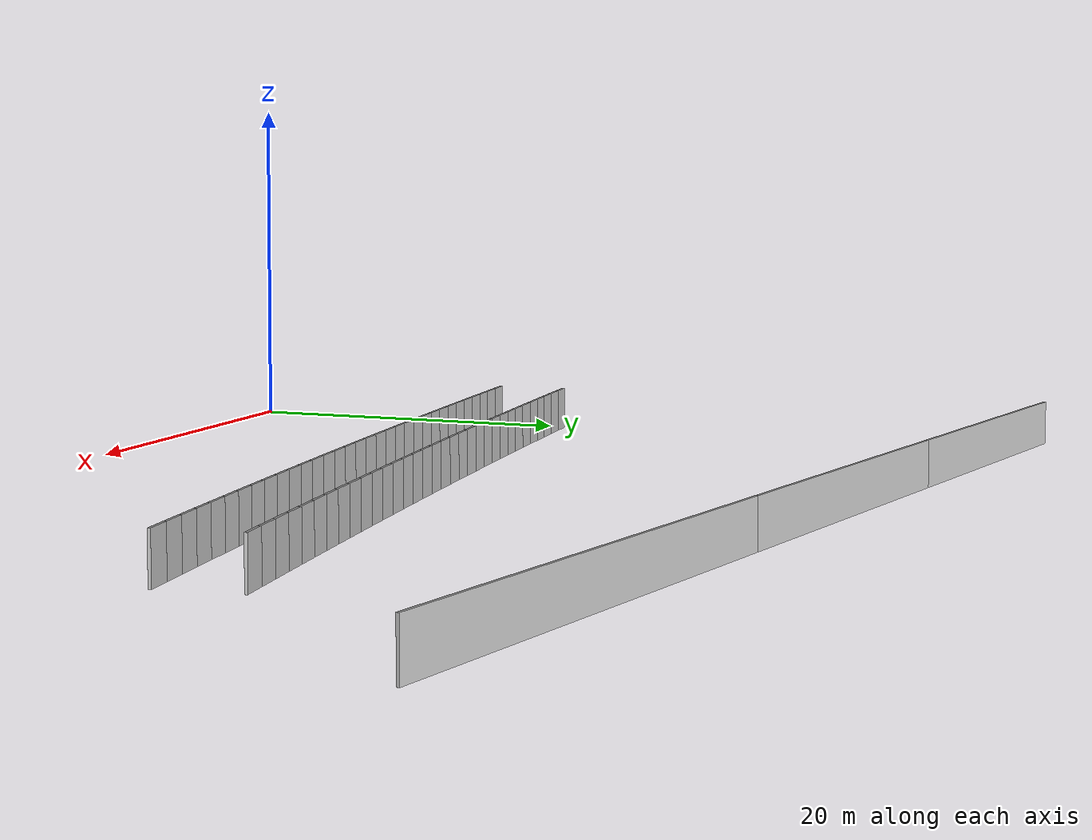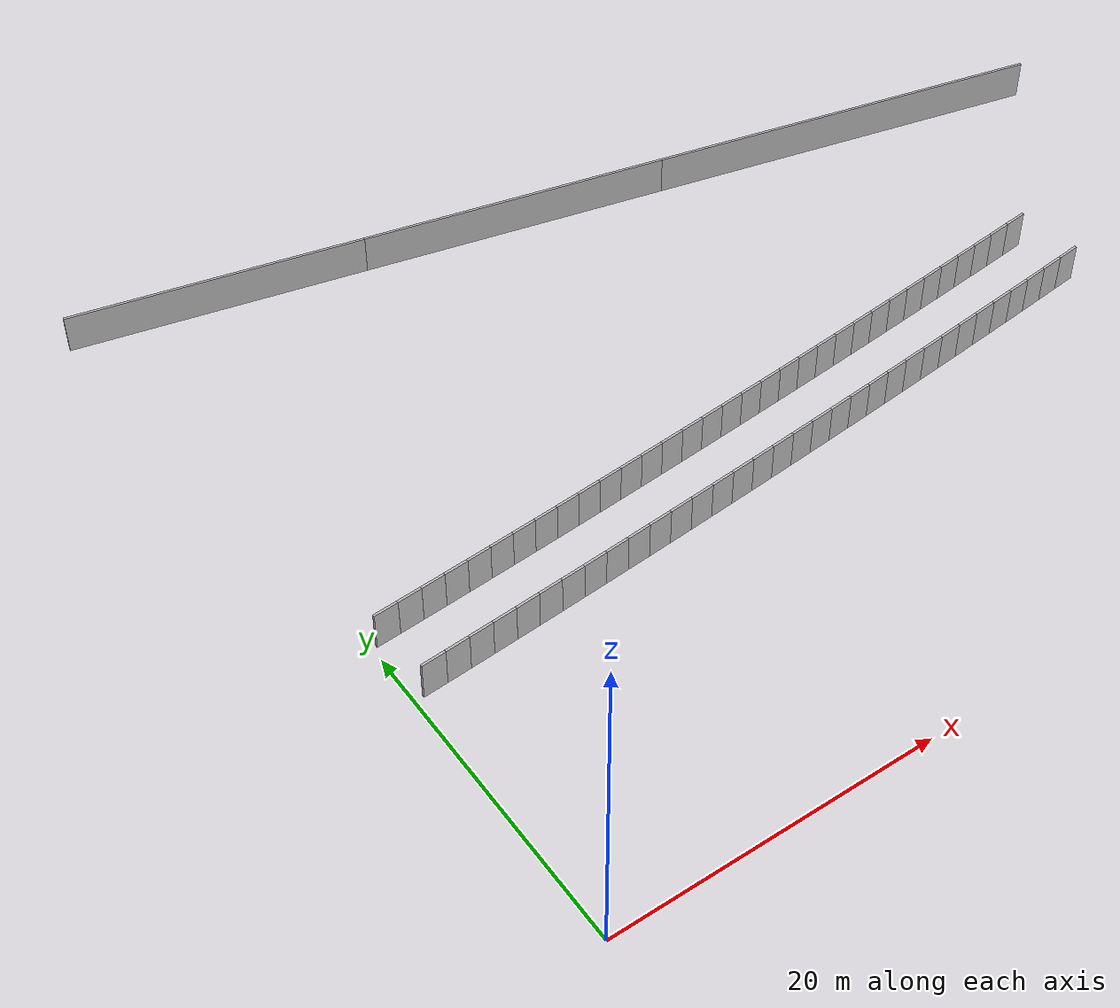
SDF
<?xml version="1.0" ?>
<sdf version="1.6">
  <model name="sps_2703">
    <pose frame="">0 0 0 0 -0 0</pose>
    <static>1</static>
    <self_collide>0</self_collide>
    <allow_auto_disable>0</allow_auto_disable>
    <link name="Wall237">
      <kinematic>0</kinematic>
      <gravity>1</gravity>
      <self_collide>0</self_collide>
      <collision name="collision">
        <geometry>
          <box>
            <size>18.5004 0.15 2.5</size>
          </box>
        </geometry>
        <pose frame="">0 0 0 0 -0 0</pose>
      </collision>
      <visual name="visual">
        <geometry>
          <box>
            <size>18.5004 0.15 2.5</size>
          </box>
        </geometry>
        <pose frame="">0 0 0 0 -0 0</pose>
        <cast_shadows>1</cast_shadows>
        <transparency>0.0</transparency>
      </visual>
      <pose frame="">6.13137 48.5066 1.25 0 0 -0.214248</pose>
    </link>
    <link name="Wall238">
      <kinematic>0</kinematic>
      <gravity>1</gravity>
      <self_collide>0</self_collide>
      <collision name="collision">
        <geometry>
          <box>
            <size>19.751 0.15 2.5</size>
          </box>
        </geometry>
        <pose frame="">0 0 0 0 -0 0</pose>
      </collision>
      <visual name="visual">
        <geometry>
          <box>
            <size>19.751 0.15 2.5</size>
          </box>
        </geometry>
        <pose frame="">0 0 0 0 -0 0</pose>
        <cast_shadows>1</cast_shadows>
        <transparency>0.0</transparency>
      </visual>
      <pose frame="">24.8198 44.4402 1.25 0 0 -0.214253</pose>
    </link>
    <link name="Wall239">
      <kinematic>0</kinematic>
      <gravity>1</gravity>
      <self_collide>0</self_collide>
      <collision name="collision">
        <geometry>
          <box>
            <size>26.0944 0.15 2.5</size>
          </box>
        </geometry>
        <pose frame="">0 0 0 0 -0 0</pose>
      </collision>
      <visual name="visual">
        <geometry>
          <box>
            <size>26.0944 0.15 2.5</size>
          </box>
        </geometry>
        <pose frame="">0 0 0 0 -0 0</pose>
        <cast_shadows>1</cast_shadows>
        <transparency>0.0</transparency>
      </visual>
      <pose frame="">47.2183 39.5664 1.25 0 0 -0.214253</pose>
    </link>
    <link name="Wall3705">
      <kinematic>0</kinematic>
      <gravity>1</gravity>
      <self_collide>0</self_collide>
      <collision name="collision">
        <geometry>
          <box>
            <size>1.49669 0.15 2.5</size>
          </box>
        </geometry>
        <pose frame="">0 0 0 0 -0 0</pose>
      </collision>
      <visual name="visual">
        <geometry>
          <box>
            <size>1.49669 0.15 2.5</size>
          </box>
        </geometry>
        <pose frame="">0 0 0 0 -0 0</pose>
        <cast_shadows>1</cast_shadows>
        <transparency>0.0</transparency>
      </visual>
      <pose frame="">1.02843 20.9994 1.25 0 -0 0.0643139</pose>
    </link>
    <link name="Wall3706">
      <kinematic>0</kinematic>
      <gravity>1</gravity>
      <self_collide>0</self_collide>
      <collision name="collision">
        <geometry>
          <box>
            <size>1.49646 0.15 2.5</size>
          </box>
        </geometry>
        <pose frame="">0 0 0 0 -0 0</pose>
      </collision>
      <visual name="visual">
        <geometry>
          <box>
            <size>1.49646 0.15 2.5</size>
          </box>
        </geometry>
        <pose frame="">0 0 0 0 -0 0</pose>
        <cast_shadows>1</cast_shadows>
        <transparency>0.0</transparency>
      </visual>
      <pose frame="">2.52184 21.0967 1.25 0 -0 0.0657949</pose>
    </link>
    <link name="Wall3707">
      <kinematic>0</kinematic>
      <gravity>1</gravity>
      <self_collide>0</self_collide>
      <collision name="collision">
        <geometry>
          <box>
            <size>1.49663 0.15 2.5</size>
          </box>
        </geometry>
        <pose frame="">0 0 0 0 -0 0</pose>
      </collision>
      <visual name="visual">
        <geometry>
          <box>
            <size>1.49663 0.15 2.5</size>
          </box>
        </geometry>
        <pose frame="">0 0 0 0 -0 0</pose>
        <cast_shadows>1</cast_shadows>
        <transparency>0.0</transparency>
      </visual>
      <pose frame="">4.01507 21.1963 1.25 0 -0 0.0674227</pose>
    </link>
    <link name="Wall3708">
      <kinematic>0</kinematic>
      <gravity>1</gravity>
      <self_collide>0</self_collide>
      <collision name="collision">
        <geometry>
          <box>
            <size>1.49654 0.15 2.5</size>
          </box>
        </geometry>
        <pose frame="">0 0 0 0 -0 0</pose>
      </collision>
      <visual name="visual">
        <geometry>
          <box>
            <size>1.49654 0.15 2.5</size>
          </box>
        </geometry>
        <pose frame="">0 0 0 0 -0 0</pose>
        <cast_shadows>1</cast_shadows>
        <transparency>0.0</transparency>
      </visual>
      <pose frame="">5.50817 21.2983 1.25 0 -0 0.06898</pose>
    </link>
    <link name="Wall3709">
      <kinematic>0</kinematic>
      <gravity>1</gravity>
      <self_collide>0</self_collide>
      <collision name="collision">
        <geometry>
          <box>
            <size>1.49636 0.15 2.5</size>
          </box>
        </geometry>
        <pose frame="">0 0 0 0 -0 0</pose>
      </collision>
      <visual name="visual">
        <geometry>
          <box>
            <size>1.49636 0.15 2.5</size>
          </box>
        </geometry>
        <pose frame="">0 0 0 0 -0 0</pose>
        <cast_shadows>1</cast_shadows>
        <transparency>0.0</transparency>
      </visual>
      <pose frame="">7.00097 21.4028 1.25 0 -0 0.0707873</pose>
    </link>
    <link name="Wall3710">
      <kinematic>0</kinematic>
      <gravity>1</gravity>
      <self_collide>0</self_collide>
      <collision name="collision">
        <geometry>
          <box>
            <size>1.49645 0.15 2.5</size>
          </box>
        </geometry>
        <pose frame="">0 0 0 0 -0 0</pose>
      </collision>
      <visual name="visual">
        <geometry>
          <box>
            <size>1.49645 0.15 2.5</size>
          </box>
        </geometry>
        <pose frame="">0 0 0 0 -0 0</pose>
        <cast_shadows>1</cast_shadows>
        <transparency>0.0</transparency>
      </visual>
      <pose frame="">8.49355 21.5097 1.25 0 -0 0.0722141</pose>
    </link>
    <link name="Wall3711">
      <kinematic>0</kinematic>
      <gravity>1</gravity>
      <self_collide>0</self_collide>
      <collision name="collision">
        <geometry>
          <box>
            <size>1.49669 0.15 2.5</size>
          </box>
        </geometry>
        <pose frame="">0 0 0 0 -0 0</pose>
      </collision>
      <visual name="visual">
        <geometry>
          <box>
            <size>1.49669 0.15 2.5</size>
          </box>
        </geometry>
        <pose frame="">0 0 0 0 -0 0</pose>
        <cast_shadows>1</cast_shadows>
        <transparency>0.0</transparency>
      </visual>
      <pose frame="">9.98614 21.6189 1.25 0 -0 0.0738381</pose>
    </link>
    <link name="Wall3712">
      <kinematic>0</kinematic>
      <gravity>1</gravity>
      <self_collide>0</self_collide>
      <collision name="collision">
        <geometry>
          <box>
            <size>1.49643 0.15 2.5</size>
          </box>
        </geometry>
        <pose frame="">0 0 0 0 -0 0</pose>
      </collision>
      <visual name="visual">
        <geometry>
          <box>
            <size>1.49643 0.15 2.5</size>
          </box>
        </geometry>
        <pose frame="">0 0 0 0 -0 0</pose>
        <cast_shadows>1</cast_shadows>
        <transparency>0.0</transparency>
      </visual>
      <pose frame="">11.4785 21.7304 1.25 0 -0 0.0753235</pose>
    </link>
    <link name="Wall3713">
      <kinematic>0</kinematic>
      <gravity>1</gravity>
      <self_collide>0</self_collide>
      <collision name="collision">
        <geometry>
          <box>
            <size>1.49669 0.15 2.5</size>
          </box>
        </geometry>
        <pose frame="">0 0 0 0 -0 0</pose>
      </collision>
      <visual name="visual">
        <geometry>
          <box>
            <size>1.49669 0.15 2.5</size>
          </box>
        </geometry>
        <pose frame="">0 0 0 0 -0 0</pose>
        <cast_shadows>1</cast_shadows>
        <transparency>0.0</transparency>
      </visual>
      <pose frame="">12.9708 21.8443 1.25 0 -0 0.0770284</pose>
    </link>
    <link name="Wall3714">
      <kinematic>0</kinematic>
      <gravity>1</gravity>
      <self_collide>0</self_collide>
      <collision name="collision">
        <geometry>
          <box>
            <size>1.49638 0.15 2.5</size>
          </box>
        </geometry>
        <pose frame="">0 0 0 0 -0 0</pose>
      </collision>
      <visual name="visual">
        <geometry>
          <box>
            <size>1.49638 0.15 2.5</size>
          </box>
        </geometry>
        <pose frame="">0 0 0 0 -0 0</pose>
        <cast_shadows>1</cast_shadows>
        <transparency>0.0</transparency>
      </visual>
      <pose frame="">14.4628 21.9606 1.25 0 -0 0.0785582</pose>
    </link>
    <link name="Wall3715">
      <kinematic>0</kinematic>
      <gravity>1</gravity>
      <self_collide>0</self_collide>
      <collision name="collision">
        <geometry>
          <box>
            <size>1.49662 0.15 2.5</size>
          </box>
        </geometry>
        <pose frame="">0 0 0 0 -0 0</pose>
      </collision>
      <visual name="visual">
        <geometry>
          <box>
            <size>1.49662 0.15 2.5</size>
          </box>
        </geometry>
        <pose frame="">0 0 0 0 -0 0</pose>
        <cast_shadows>1</cast_shadows>
        <transparency>0.0</transparency>
      </visual>
      <pose frame="">15.9546 22.0792 1.25 0 -0 0.0801406</pose>
    </link>
    <link name="Wall3716">
      <kinematic>0</kinematic>
      <gravity>1</gravity>
      <self_collide>0</self_collide>
      <collision name="collision">
        <geometry>
          <box>
            <size>1.49659 0.15 2.5</size>
          </box>
        </geometry>
        <pose frame="">0 0 0 0 -0 0</pose>
      </collision>
      <visual name="visual">
        <geometry>
          <box>
            <size>1.49659 0.15 2.5</size>
          </box>
        </geometry>
        <pose frame="">0 0 0 0 -0 0</pose>
        <cast_shadows>1</cast_shadows>
        <transparency>0.0</transparency>
      </visual>
      <pose frame="">17.4463 22.2003 1.25 0 -0 0.081861</pose>
    </link>
    <link name="Wall3717">
      <kinematic>0</kinematic>
      <gravity>1</gravity>
      <self_collide>0</self_collide>
      <collision name="collision">
        <geometry>
          <box>
            <size>1.49657 0.15 2.5</size>
          </box>
        </geometry>
        <pose frame="">0 0 0 0 -0 0</pose>
      </collision>
      <visual name="visual">
        <geometry>
          <box>
            <size>1.49657 0.15 2.5</size>
          </box>
        </geometry>
        <pose frame="">0 0 0 0 -0 0</pose>
        <cast_shadows>1</cast_shadows>
        <transparency>0.0</transparency>
      </visual>
      <pose frame="">18.9377 22.3237 1.25 0 -0 0.0832124</pose>
    </link>
    <link name="Wall3718">
      <kinematic>0</kinematic>
      <gravity>1</gravity>
      <self_collide>0</self_collide>
      <collision name="collision">
        <geometry>
          <box>
            <size>1.49661 0.15 2.5</size>
          </box>
        </geometry>
        <pose frame="">0 0 0 0 -0 0</pose>
      </collision>
      <visual name="visual">
        <geometry>
          <box>
            <size>1.49661 0.15 2.5</size>
          </box>
        </geometry>
        <pose frame="">0 0 0 0 -0 0</pose>
        <cast_shadows>1</cast_shadows>
        <transparency>0.0</transparency>
      </visual>
      <pose frame="">20.429 22.4494 1.25 0 -0 0.0849701</pose>
    </link>
    <link name="Wall3719">
      <kinematic>0</kinematic>
      <gravity>1</gravity>
      <self_collide>0</self_collide>
      <collision name="collision">
        <geometry>
          <box>
            <size>1.49637 0.15 2.5</size>
          </box>
        </geometry>
        <pose frame="">0 0 0 0 -0 0</pose>
      </collision>
      <visual name="visual">
        <geometry>
          <box>
            <size>1.49637 0.15 2.5</size>
          </box>
        </geometry>
        <pose frame="">0 0 0 0 -0 0</pose>
        <cast_shadows>1</cast_shadows>
        <transparency>0.0</transparency>
      </visual>
      <pose frame="">21.92 22.5775 1.25 0 -0 0.0864574</pose>
    </link>
    <link name="Wall3720">
      <kinematic>0</kinematic>
      <gravity>1</gravity>
      <self_collide>0</self_collide>
      <collision name="collision">
        <geometry>
          <box>
            <size>1.49664 0.15 2.5</size>
          </box>
        </geometry>
        <pose frame="">0 0 0 0 -0 0</pose>
      </collision>
      <visual name="visual">
        <geometry>
          <box>
            <size>1.49664 0.15 2.5</size>
          </box>
        </geometry>
        <pose frame="">0 0 0 0 -0 0</pose>
        <cast_shadows>1</cast_shadows>
        <transparency>0.0</transparency>
      </visual>
      <pose frame="">23.4108 22.7079 1.25 0 -0 0.0880384</pose>
    </link>
    <link name="Wall3721">
      <kinematic>0</kinematic>
      <gravity>1</gravity>
      <self_collide>0</self_collide>
      <collision name="collision">
        <geometry>
          <box>
            <size>1.49661 0.15 2.5</size>
          </box>
        </geometry>
        <pose frame="">0 0 0 0 -0 0</pose>
      </collision>
      <visual name="visual">
        <geometry>
          <box>
            <size>1.49661 0.15 2.5</size>
          </box>
        </geometry>
        <pose frame="">0 0 0 0 -0 0</pose>
        <cast_shadows>1</cast_shadows>
        <transparency>0.0</transparency>
      </visual>
      <pose frame="">24.9016 22.8407 1.25 0 -0 0.0896371</pose>
    </link>
    <link name="Wall3722">
      <kinematic>0</kinematic>
      <gravity>1</gravity>
      <self_collide>0</self_collide>
      <collision name="collision">
        <geometry>
          <box>
            <size>1.49659 0.15 2.5</size>
          </box>
        </geometry>
        <pose frame="">0 0 0 0 -0 0</pose>
      </collision>
      <visual name="visual">
        <geometry>
          <box>
            <size>1.49659 0.15 2.5</size>
          </box>
        </geometry>
        <pose frame="">0 0 0 0 -0 0</pose>
        <cast_shadows>1</cast_shadows>
        <transparency>0.0</transparency>
      </visual>
      <pose frame="">26.3921 22.9759 1.25 0 -0 0.0912765</pose>
    </link>
    <link name="Wall3723">
      <kinematic>0</kinematic>
      <gravity>1</gravity>
      <self_collide>0</self_collide>
      <collision name="collision">
        <geometry>
          <box>
            <size>1.49648 0.15 2.5</size>
          </box>
        </geometry>
        <pose frame="">0 0 0 0 -0 0</pose>
      </collision>
      <visual name="visual">
        <geometry>
          <box>
            <size>1.49648 0.15 2.5</size>
          </box>
        </geometry>
        <pose frame="">0 0 0 0 -0 0</pose>
        <cast_shadows>1</cast_shadows>
        <transparency>0.0</transparency>
      </visual>
      <pose frame="">27.8823 23.1134 1.25 0 -0 0.0927573</pose>
    </link>
    <link name="Wall3724">
      <kinematic>0</kinematic>
      <gravity>1</gravity>
      <self_collide>0</self_collide>
      <collision name="collision">
        <geometry>
          <box>
            <size>1.49642 0.15 2.5</size>
          </box>
        </geometry>
        <pose frame="">0 0 0 0 -0 0</pose>
      </collision>
      <visual name="visual">
        <geometry>
          <box>
            <size>1.49642 0.15 2.5</size>
          </box>
        </geometry>
        <pose frame="">0 0 0 0 -0 0</pose>
        <cast_shadows>1</cast_shadows>
        <transparency>0.0</transparency>
      </visual>
      <pose frame="">29.3722 23.2533 1.25 0 -0 0.0944819</pose>
    </link>
    <link name="Wall3725">
      <kinematic>0</kinematic>
      <gravity>1</gravity>
      <self_collide>0</self_collide>
      <collision name="collision">
        <geometry>
          <box>
            <size>1.49651 0.15 2.5</size>
          </box>
        </geometry>
        <pose frame="">0 0 0 0 -0 0</pose>
      </collision>
      <visual name="visual">
        <geometry>
          <box>
            <size>1.49651 0.15 2.5</size>
          </box>
        </geometry>
        <pose frame="">0 0 0 0 -0 0</pose>
        <cast_shadows>1</cast_shadows>
        <transparency>0.0</transparency>
      </visual>
      <pose frame="">30.8618 23.3956 1.25 0 -0 0.0959919</pose>
    </link>
    <link name="Wall3726">
      <kinematic>0</kinematic>
      <gravity>1</gravity>
      <self_collide>0</self_collide>
      <collision name="collision">
        <geometry>
          <box>
            <size>1.4965 0.15 2.5</size>
          </box>
        </geometry>
        <pose frame="">0 0 0 0 -0 0</pose>
      </collision>
      <visual name="visual">
        <geometry>
          <box>
            <size>1.4965 0.15 2.5</size>
          </box>
        </geometry>
        <pose frame="">0 0 0 0 -0 0</pose>
        <cast_shadows>1</cast_shadows>
        <transparency>0.0</transparency>
      </visual>
      <pose frame="">32.3513 23.5402 1.25 0 -0 0.0975908</pose>
    </link>
    <link name="Wall3727">
      <kinematic>0</kinematic>
      <gravity>1</gravity>
      <self_collide>0</self_collide>
      <collision name="collision">
        <geometry>
          <box>
            <size>1.49655 0.15 2.5</size>
          </box>
        </geometry>
        <pose frame="">0 0 0 0 -0 0</pose>
      </collision>
      <visual name="visual">
        <geometry>
          <box>
            <size>1.49655 0.15 2.5</size>
          </box>
        </geometry>
        <pose frame="">0 0 0 0 -0 0</pose>
        <cast_shadows>1</cast_shadows>
        <transparency>0.0</transparency>
      </visual>
      <pose frame="">33.8406 23.6872 1.25 0 -0 0.0991857</pose>
    </link>
    <link name="Wall3728">
      <kinematic>0</kinematic>
      <gravity>1</gravity>
      <self_collide>0</self_collide>
      <collision name="collision">
        <geometry>
          <box>
            <size>1.49661 0.15 2.5</size>
          </box>
        </geometry>
        <pose frame="">0 0 0 0 -0 0</pose>
      </collision>
      <visual name="visual">
        <geometry>
          <box>
            <size>1.49661 0.15 2.5</size>
          </box>
        </geometry>
        <pose frame="">0 0 0 0 -0 0</pose>
        <cast_shadows>1</cast_shadows>
        <transparency>0.0</transparency>
      </visual>
      <pose frame="">35.3297 23.8366 1.25 0 -0 0.100781</pose>
    </link>
    <link name="Wall3729">
      <kinematic>0</kinematic>
      <gravity>1</gravity>
      <self_collide>0</self_collide>
      <collision name="collision">
        <geometry>
          <box>
            <size>1.49641 0.15 2.5</size>
          </box>
        </geometry>
        <pose frame="">0 0 0 0 -0 0</pose>
      </collision>
      <visual name="visual">
        <geometry>
          <box>
            <size>1.49641 0.15 2.5</size>
          </box>
        </geometry>
        <pose frame="">0 0 0 0 -0 0</pose>
        <cast_shadows>1</cast_shadows>
        <transparency>0.0</transparency>
      </visual>
      <pose frame="">36.8185 23.9883 1.25 0 -0 0.102311</pose>
    </link>
    <link name="Wall3730">
      <kinematic>0</kinematic>
      <gravity>1</gravity>
      <self_collide>0</self_collide>
      <collision name="collision">
        <geometry>
          <box>
            <size>1.49647 0.15 2.5</size>
          </box>
        </geometry>
        <pose frame="">0 0 0 0 -0 0</pose>
      </collision>
      <visual name="visual">
        <geometry>
          <box>
            <size>1.49647 0.15 2.5</size>
          </box>
        </geometry>
        <pose frame="">0 0 0 0 -0 0</pose>
        <cast_shadows>1</cast_shadows>
        <transparency>0.0</transparency>
      </visual>
      <pose frame="">38.307 24.1423 1.25 0 -0 0.103865</pose>
    </link>
    <link name="Wall3731">
      <kinematic>0</kinematic>
      <gravity>1</gravity>
      <self_collide>0</self_collide>
      <collision name="collision">
        <geometry>
          <box>
            <size>1.49655 0.15 2.5</size>
          </box>
        </geometry>
        <pose frame="">0 0 0 0 -0 0</pose>
      </collision>
      <visual name="visual">
        <geometry>
          <box>
            <size>1.49655 0.15 2.5</size>
          </box>
        </geometry>
        <pose frame="">0 0 0 0 -0 0</pose>
        <cast_shadows>1</cast_shadows>
        <transparency>0.0</transparency>
      </visual>
      <pose frame="">39.7953 24.2987 1.25 0 -0 0.105541</pose>
    </link>
    <link name="Wall3732">
      <kinematic>0</kinematic>
      <gravity>1</gravity>
      <self_collide>0</self_collide>
      <collision name="collision">
        <geometry>
          <box>
            <size>1.49653 0.15 2.5</size>
          </box>
        </geometry>
        <pose frame="">0 0 0 0 -0 0</pose>
      </collision>
      <visual name="visual">
        <geometry>
          <box>
            <size>1.49653 0.15 2.5</size>
          </box>
        </geometry>
        <pose frame="">0 0 0 0 -0 0</pose>
        <cast_shadows>1</cast_shadows>
        <transparency>0.0</transparency>
      </visual>
      <pose frame="">41.2834 24.4574 1.25 0 -0 0.106978</pose>
    </link>
    <link name="Wall3733">
      <kinematic>0</kinematic>
      <gravity>1</gravity>
      <self_collide>0</self_collide>
      <collision name="collision">
        <geometry>
          <box>
            <size>1.49669 0.15 2.5</size>
          </box>
        </geometry>
        <pose frame="">0 0 0 0 -0 0</pose>
      </collision>
      <visual name="visual">
        <geometry>
          <box>
            <size>1.49669 0.15 2.5</size>
          </box>
        </geometry>
        <pose frame="">0 0 0 0 -0 0</pose>
        <cast_shadows>1</cast_shadows>
        <transparency>0.0</transparency>
      </visual>
      <pose frame="">42.7714 24.6185 1.25 0 -0 0.10873</pose>
    </link>
    <link name="Wall3734">
      <kinematic>0</kinematic>
      <gravity>1</gravity>
      <self_collide>0</self_collide>
      <collision name="collision">
        <geometry>
          <box>
            <size>1.49644 0.15 2.5</size>
          </box>
        </geometry>
        <pose frame="">0 0 0 0 -0 0</pose>
      </collision>
      <visual name="visual">
        <geometry>
          <box>
            <size>1.49644 0.15 2.5</size>
          </box>
        </geometry>
        <pose frame="">0 0 0 0 -0 0</pose>
        <cast_shadows>1</cast_shadows>
        <transparency>0.0</transparency>
      </visual>
      <pose frame="">44.259 24.782 1.25 0 -0 0.110184</pose>
    </link>
    <link name="Wall3735">
      <kinematic>0</kinematic>
      <gravity>1</gravity>
      <self_collide>0</self_collide>
      <collision name="collision">
        <geometry>
          <box>
            <size>1.49653 0.15 2.5</size>
          </box>
        </geometry>
        <pose frame="">0 0 0 0 -0 0</pose>
      </collision>
      <visual name="visual">
        <geometry>
          <box>
            <size>1.49653 0.15 2.5</size>
          </box>
        </geometry>
        <pose frame="">0 0 0 0 -0 0</pose>
        <cast_shadows>1</cast_shadows>
        <transparency>0.0</transparency>
      </visual>
      <pose frame="">45.7462 24.9478 1.25 0 -0 0.111819</pose>
    </link>
    <link name="Wall3736">
      <kinematic>0</kinematic>
      <gravity>1</gravity>
      <self_collide>0</self_collide>
      <collision name="collision">
        <geometry>
          <box>
            <size>1.49662 0.15 2.5</size>
          </box>
        </geometry>
        <pose frame="">0 0 0 0 -0 0</pose>
      </collision>
      <visual name="visual">
        <geometry>
          <box>
            <size>1.49662 0.15 2.5</size>
          </box>
        </geometry>
        <pose frame="">0 0 0 0 -0 0</pose>
        <cast_shadows>1</cast_shadows>
        <transparency>0.0</transparency>
      </visual>
      <pose frame="">47.2333 25.116 1.25 0 -0 0.113454</pose>
    </link>
    <link name="Wall3737">
      <kinematic>0</kinematic>
      <gravity>1</gravity>
      <self_collide>0</self_collide>
      <collision name="collision">
        <geometry>
          <box>
            <size>1.49653 0.15 2.5</size>
          </box>
        </geometry>
        <pose frame="">0 0 0 0 -0 0</pose>
      </collision>
      <visual name="visual">
        <geometry>
          <box>
            <size>1.49653 0.15 2.5</size>
          </box>
        </geometry>
        <pose frame="">0 0 0 0 -0 0</pose>
        <cast_shadows>1</cast_shadows>
        <transparency>0.0</transparency>
      </visual>
      <pose frame="">48.7201 25.2866 1.25 0 -0 0.115062</pose>
    </link>
    <link name="Wall7480">
      <kinematic>0</kinematic>
      <gravity>1</gravity>
      <self_collide>0</self_collide>
      <collision name="collision">
        <geometry>
          <box>
            <size>1.50311 0.15 2.5</size>
          </box>
        </geometry>
        <pose frame="">0 0 0 0 -0 0</pose>
      </collision>
      <visual name="visual">
        <geometry>
          <box>
            <size>1.50311 0.15 2.5</size>
          </box>
        </geometry>
        <pose frame="">0 0 0 0 -0 0</pose>
        <cast_shadows>1</cast_shadows>
        <transparency>0.0</transparency>
      </visual>
      <pose frame="">1.29787 16.8678 1.25 0 -0 0.0643236</pose>
    </link>
    <link name="Wall7481">
      <kinematic>0</kinematic>
      <gravity>1</gravity>
      <self_collide>0</self_collide>
      <collision name="collision">
        <geometry>
          <box>
            <size>1.50301 0.15 2.5</size>
          </box>
        </geometry>
        <pose frame="">0 0 0 0 -0 0</pose>
      </collision>
      <visual name="visual">
        <geometry>
          <box>
            <size>1.50301 0.15 2.5</size>
          </box>
        </geometry>
        <pose frame="">0 0 0 0 -0 0</pose>
        <cast_shadows>1</cast_shadows>
        <transparency>0.0</transparency>
      </visual>
      <pose frame="">2.79775 16.9655 1.25 0 -0 0.0657929</pose>
    </link>
    <link name="Wall7482">
      <kinematic>0</kinematic>
      <gravity>1</gravity>
      <self_collide>0</self_collide>
      <collision name="collision">
        <geometry>
          <box>
            <size>1.50306 0.15 2.5</size>
          </box>
        </geometry>
        <pose frame="">0 0 0 0 -0 0</pose>
      </collision>
      <visual name="visual">
        <geometry>
          <box>
            <size>1.50306 0.15 2.5</size>
          </box>
        </geometry>
        <pose frame="">0 0 0 0 -0 0</pose>
        <cast_shadows>1</cast_shadows>
        <transparency>0.0</transparency>
      </visual>
      <pose frame="">4.29745 17.0656 1.25 0 -0 0.0675001</pose>
    </link>
    <link name="Wall7483">
      <kinematic>0</kinematic>
      <gravity>1</gravity>
      <self_collide>0</self_collide>
      <collision name="collision">
        <geometry>
          <box>
            <size>1.50296 0.15 2.5</size>
          </box>
        </geometry>
        <pose frame="">0 0 0 0 -0 0</pose>
      </collision>
      <visual name="visual">
        <geometry>
          <box>
            <size>1.50296 0.15 2.5</size>
          </box>
        </geometry>
        <pose frame="">0 0 0 0 -0 0</pose>
        <cast_shadows>1</cast_shadows>
        <transparency>0.0</transparency>
      </visual>
      <pose frame="">5.79696 17.1681 1.25 0 -0 0.0689696</pose>
    </link>
    <link name="Wall7484">
      <kinematic>0</kinematic>
      <gravity>1</gravity>
      <self_collide>0</self_collide>
      <collision name="collision">
        <geometry>
          <box>
            <size>1.50315 0.15 2.5</size>
          </box>
        </geometry>
        <pose frame="">0 0 0 0 -0 0</pose>
      </collision>
      <visual name="visual">
        <geometry>
          <box>
            <size>1.50315 0.15 2.5</size>
          </box>
        </geometry>
        <pose frame="">0 0 0 0 -0 0</pose>
        <cast_shadows>1</cast_shadows>
        <transparency>0.0</transparency>
      </visual>
      <pose frame="">7.29635 17.273 1.25 0 -0 0.0707115</pose>
    </link>
    <link name="Wall7485">
      <kinematic>0</kinematic>
      <gravity>1</gravity>
      <self_collide>0</self_collide>
      <collision name="collision">
        <geometry>
          <box>
            <size>1.50312 0.15 2.5</size>
          </box>
        </geometry>
        <pose frame="">0 0 0 0 -0 0</pose>
      </collision>
      <visual name="visual">
        <geometry>
          <box>
            <size>1.50312 0.15 2.5</size>
          </box>
        </geometry>
        <pose frame="">0 0 0 0 -0 0</pose>
        <cast_shadows>1</cast_shadows>
        <transparency>0.0</transparency>
      </visual>
      <pose frame="">8.79565 17.3803 1.25 0 -0 0.0721783</pose>
    </link>
    <link name="Wall7486">
      <kinematic>0</kinematic>
      <gravity>1</gravity>
      <self_collide>0</self_collide>
      <collision name="collision">
        <geometry>
          <box>
            <size>1.50313 0.15 2.5</size>
          </box>
        </geometry>
        <pose frame="">0 0 0 0 -0 0</pose>
      </collision>
      <visual name="visual">
        <geometry>
          <box>
            <size>1.50313 0.15 2.5</size>
          </box>
        </geometry>
        <pose frame="">0 0 0 0 -0 0</pose>
        <cast_shadows>1</cast_shadows>
        <transparency>0.0</transparency>
      </visual>
      <pose frame="">10.2948 17.49 1.25 0 -0 0.0739285</pose>
    </link>
    <link name="Wall7487">
      <kinematic>0</kinematic>
      <gravity>1</gravity>
      <self_collide>0</self_collide>
      <collision name="collision">
        <geometry>
          <box>
            <size>1.50305 0.15 2.5</size>
          </box>
        </geometry>
        <pose frame="">0 0 0 0 -0 0</pose>
      </collision>
      <visual name="visual">
        <geometry>
          <box>
            <size>1.50305 0.15 2.5</size>
          </box>
        </geometry>
        <pose frame="">0 0 0 0 -0 0</pose>
        <cast_shadows>1</cast_shadows>
        <transparency>0.0</transparency>
      </visual>
      <pose frame="">11.7937 17.6021 1.25 0 -0 0.0753984</pose>
    </link>
    <link name="Wall7488">
      <kinematic>0</kinematic>
      <gravity>1</gravity>
      <self_collide>0</self_collide>
      <collision name="collision">
        <geometry>
          <box>
            <size>1.50322 0.15 2.5</size>
          </box>
        </geometry>
        <pose frame="">0 0 0 0 -0 0</pose>
      </collision>
      <visual name="visual">
        <geometry>
          <box>
            <size>1.50322 0.15 2.5</size>
          </box>
        </geometry>
        <pose frame="">0 0 0 0 -0 0</pose>
        <cast_shadows>1</cast_shadows>
        <transparency>0.0</transparency>
      </visual>
      <pose frame="">13.2924 17.7164 1.25 0 -0 0.076856</pose>
    </link>
    <link name="Wall7489">
      <kinematic>0</kinematic>
      <gravity>1</gravity>
      <self_collide>0</self_collide>
      <collision name="collision">
        <geometry>
          <box>
            <size>1.50305 0.15 2.5</size>
          </box>
        </geometry>
        <pose frame="">0 0 0 0 -0 0</pose>
      </collision>
      <visual name="visual">
        <geometry>
          <box>
            <size>1.50305 0.15 2.5</size>
          </box>
        </geometry>
        <pose frame="">0 0 0 0 -0 0</pose>
        <cast_shadows>1</cast_shadows>
        <transparency>0.0</transparency>
      </visual>
      <pose frame="">14.791 17.8331 1.25 0 -0 0.0785752</pose>
    </link>
    <link name="Wall7490">
      <kinematic>0</kinematic>
      <gravity>1</gravity>
      <self_collide>0</self_collide>
      <collision name="collision">
        <geometry>
          <box>
            <size>1.50306 0.15 2.5</size>
          </box>
        </geometry>
        <pose frame="">0 0 0 0 -0 0</pose>
      </collision>
      <visual name="visual">
        <geometry>
          <box>
            <size>1.50306 0.15 2.5</size>
          </box>
        </geometry>
        <pose frame="">0 0 0 0 -0 0</pose>
        <cast_shadows>1</cast_shadows>
        <transparency>0.0</transparency>
      </visual>
      <pose frame="">16.2894 17.9523 1.25 0 -0 0.0801635</pose>
    </link>
    <link name="Wall7491">
      <kinematic>0</kinematic>
      <gravity>1</gravity>
      <self_collide>0</self_collide>
      <collision name="collision">
        <geometry>
          <box>
            <size>1.50301 0.15 2.5</size>
          </box>
        </geometry>
        <pose frame="">0 0 0 0 -0 0</pose>
      </collision>
      <visual name="visual">
        <geometry>
          <box>
            <size>1.50301 0.15 2.5</size>
          </box>
        </geometry>
        <pose frame="">0 0 0 0 -0 0</pose>
        <cast_shadows>1</cast_shadows>
        <transparency>0.0</transparency>
      </visual>
      <pose frame="">17.7875 18.0739 1.25 0 -0 0.0817957</pose>
    </link>
    <link name="Wall7492">
      <kinematic>0</kinematic>
      <gravity>1</gravity>
      <self_collide>0</self_collide>
      <collision name="collision">
        <geometry>
          <box>
            <size>1.50319 0.15 2.5</size>
          </box>
        </geometry>
        <pose frame="">0 0 0 0 -0 0</pose>
      </collision>
      <visual name="visual">
        <geometry>
          <box>
            <size>1.50319 0.15 2.5</size>
          </box>
        </geometry>
        <pose frame="">0 0 0 0 -0 0</pose>
        <cast_shadows>1</cast_shadows>
        <transparency>0.0</transparency>
      </visual>
      <pose frame="">19.2855 18.1978 1.25 0 -0 0.0832525</pose>
    </link>
    <link name="Wall7493">
      <kinematic>0</kinematic>
      <gravity>1</gravity>
      <self_collide>0</self_collide>
      <collision name="collision">
        <geometry>
          <box>
            <size>1.50305 0.15 2.5</size>
          </box>
        </geometry>
        <pose frame="">0 0 0 0 -0 0</pose>
      </collision>
      <visual name="visual">
        <geometry>
          <box>
            <size>1.50305 0.15 2.5</size>
          </box>
        </geometry>
        <pose frame="">0 0 0 0 -0 0</pose>
        <cast_shadows>1</cast_shadows>
        <transparency>0.0</transparency>
      </visual>
      <pose frame="">20.7833 18.3241 1.25 0 -0 0.0850128</pose>
    </link>
    <link name="Wall7494">
      <kinematic>0</kinematic>
      <gravity>1</gravity>
      <self_collide>0</self_collide>
      <collision name="collision">
        <geometry>
          <box>
            <size>1.50299 0.15 2.5</size>
          </box>
        </geometry>
        <pose frame="">0 0 0 0 -0 0</pose>
      </collision>
      <visual name="visual">
        <geometry>
          <box>
            <size>1.50299 0.15 2.5</size>
          </box>
        </geometry>
        <pose frame="">0 0 0 0 -0 0</pose>
        <cast_shadows>1</cast_shadows>
        <transparency>0.0</transparency>
      </visual>
      <pose frame="">22.2808 18.4528 1.25 0 -0 0.0864833</pose>
    </link>
    <link name="Wall7495">
      <kinematic>0</kinematic>
      <gravity>1</gravity>
      <self_collide>0</self_collide>
      <collision name="collision">
        <geometry>
          <box>
            <size>1.50326 0.15 2.5</size>
          </box>
        </geometry>
        <pose frame="">0 0 0 0 -0 0</pose>
      </collision>
      <visual name="visual">
        <geometry>
          <box>
            <size>1.50326 0.15 2.5</size>
          </box>
        </geometry>
        <pose frame="">0 0 0 0 -0 0</pose>
        <cast_shadows>1</cast_shadows>
        <transparency>0.0</transparency>
      </visual>
      <pose frame="">23.7782 18.5838 1.25 0 -0 0.0880573</pose>
    </link>
    <link name="Wall7496">
      <kinematic>0</kinematic>
      <gravity>1</gravity>
      <self_collide>0</self_collide>
      <collision name="collision">
        <geometry>
          <box>
            <size>1.50299 0.15 2.5</size>
          </box>
        </geometry>
        <pose frame="">0 0 0 0 -0 0</pose>
      </collision>
      <visual name="visual">
        <geometry>
          <box>
            <size>1.50299 0.15 2.5</size>
          </box>
        </geometry>
        <pose frame="">0 0 0 0 -0 0</pose>
        <cast_shadows>1</cast_shadows>
        <transparency>0.0</transparency>
      </visual>
      <pose frame="">25.2754 18.7172 1.25 0 -0 0.0896635</pose>
    </link>
    <link name="Wall7497">
      <kinematic>0</kinematic>
      <gravity>1</gravity>
      <self_collide>0</self_collide>
      <collision name="collision">
        <geometry>
          <box>
            <size>1.50327 0.15 2.5</size>
          </box>
        </geometry>
        <pose frame="">0 0 0 0 -0 0</pose>
      </collision>
      <visual name="visual">
        <geometry>
          <box>
            <size>1.50327 0.15 2.5</size>
          </box>
        </geometry>
        <pose frame="">0 0 0 0 -0 0</pose>
        <cast_shadows>1</cast_shadows>
        <transparency>0.0</transparency>
      </visual>
      <pose frame="">26.7723 18.853 1.25 0 -0 0.0912774</pose>
    </link>
    <link name="Wall7498">
      <kinematic>0</kinematic>
      <gravity>1</gravity>
      <self_collide>0</self_collide>
      <collision name="collision">
        <geometry>
          <box>
            <size>1.5031 0.15 2.5</size>
          </box>
        </geometry>
        <pose frame="">0 0 0 0 -0 0</pose>
      </collision>
      <visual name="visual">
        <geometry>
          <box>
            <size>1.5031 0.15 2.5</size>
          </box>
        </geometry>
        <pose frame="">0 0 0 0 -0 0</pose>
        <cast_shadows>1</cast_shadows>
        <transparency>0.0</transparency>
      </visual>
      <pose frame="">28.2692 18.9911 1.25 0 -0 0.0927149</pose>
    </link>
    <link name="Wall7499">
      <kinematic>0</kinematic>
      <gravity>1</gravity>
      <self_collide>0</self_collide>
      <collision name="collision">
        <geometry>
          <box>
            <size>1.5031 0.15 2.5</size>
          </box>
        </geometry>
        <pose frame="">0 0 0 0 -0 0</pose>
      </collision>
      <visual name="visual">
        <geometry>
          <box>
            <size>1.5031 0.15 2.5</size>
          </box>
        </geometry>
        <pose frame="">0 0 0 0 -0 0</pose>
        <cast_shadows>1</cast_shadows>
        <transparency>0.0</transparency>
      </visual>
      <pose frame="">29.7657 19.1316 1.25 0 -0 0.0944686</pose>
    </link>
    <link name="Wall7500">
      <kinematic>0</kinematic>
      <gravity>1</gravity>
      <self_collide>0</self_collide>
      <collision name="collision">
        <geometry>
          <box>
            <size>1.50307 0.15 2.5</size>
          </box>
        </geometry>
        <pose frame="">0 0 0 0 -0 0</pose>
      </collision>
      <visual name="visual">
        <geometry>
          <box>
            <size>1.50307 0.15 2.5</size>
          </box>
        </geometry>
        <pose frame="">0 0 0 0 -0 0</pose>
        <cast_shadows>1</cast_shadows>
        <transparency>0.0</transparency>
      </visual>
      <pose frame="">31.262 19.2745 1.25 0 -0 0.0959796</pose>
    </link>
    <link name="Wall7501">
      <kinematic>0</kinematic>
      <gravity>1</gravity>
      <self_collide>0</self_collide>
      <collision name="collision">
        <geometry>
          <box>
            <size>1.50299 0.15 2.5</size>
          </box>
        </geometry>
        <pose frame="">0 0 0 0 -0 0</pose>
      </collision>
      <visual name="visual">
        <geometry>
          <box>
            <size>1.50299 0.15 2.5</size>
          </box>
        </geometry>
        <pose frame="">0 0 0 0 -0 0</pose>
        <cast_shadows>1</cast_shadows>
        <transparency>0.0</transparency>
      </visual>
      <pose frame="">32.758 19.4197 1.25 0 -0 0.0975351</pose>
    </link>
    <link name="Wall7502">
      <kinematic>0</kinematic>
      <gravity>1</gravity>
      <self_collide>0</self_collide>
      <collision name="collision">
        <geometry>
          <box>
            <size>1.50293 0.15 2.5</size>
          </box>
        </geometry>
        <pose frame="">0 0 0 0 -0 0</pose>
      </collision>
      <visual name="visual">
        <geometry>
          <box>
            <size>1.50293 0.15 2.5</size>
          </box>
        </geometry>
        <pose frame="">0 0 0 0 -0 0</pose>
        <cast_shadows>1</cast_shadows>
        <transparency>0.0</transparency>
      </visual>
      <pose frame="">34.2537 19.5673 1.25 0 -0 0.0991716</pose>
    </link>
    <link name="Wall7503">
      <kinematic>0</kinematic>
      <gravity>1</gravity>
      <self_collide>0</self_collide>
      <collision name="collision">
        <geometry>
          <box>
            <size>1.50325 0.15 2.5</size>
          </box>
        </geometry>
        <pose frame="">0 0 0 0 -0 0</pose>
      </collision>
      <visual name="visual">
        <geometry>
          <box>
            <size>1.50325 0.15 2.5</size>
          </box>
        </geometry>
        <pose frame="">0 0 0 0 -0 0</pose>
        <cast_shadows>1</cast_shadows>
        <transparency>0.0</transparency>
      </visual>
      <pose frame="">35.7492 19.7174 1.25 0 -0 0.100905</pose>
    </link>
    <link name="Wall7504">
      <kinematic>0</kinematic>
      <gravity>1</gravity>
      <self_collide>0</self_collide>
      <collision name="collision">
        <geometry>
          <box>
            <size>1.50309 0.15 2.5</size>
          </box>
        </geometry>
        <pose frame="">0 0 0 0 -0 0</pose>
      </collision>
      <visual name="visual">
        <geometry>
          <box>
            <size>1.50309 0.15 2.5</size>
          </box>
        </geometry>
        <pose frame="">0 0 0 0 -0 0</pose>
        <cast_shadows>1</cast_shadows>
        <transparency>0.0</transparency>
      </visual>
      <pose frame="">37.2447 19.8698 1.25 0 -0 0.102222</pose>
    </link>
    <link name="Wall7505">
      <kinematic>0</kinematic>
      <gravity>1</gravity>
      <self_collide>0</self_collide>
      <collision name="collision">
        <geometry>
          <box>
            <size>1.50309 0.15 2.5</size>
          </box>
        </geometry>
        <pose frame="">0 0 0 0 -0 0</pose>
      </collision>
      <visual name="visual">
        <geometry>
          <box>
            <size>1.50309 0.15 2.5</size>
          </box>
        </geometry>
        <pose frame="">0 0 0 0 -0 0</pose>
        <cast_shadows>1</cast_shadows>
        <transparency>0.0</transparency>
      </visual>
      <pose frame="">38.7398 20.0244 1.25 0 -0 0.103855</pose>
    </link>
    <link name="Wall7506">
      <kinematic>0</kinematic>
      <gravity>1</gravity>
      <self_collide>0</self_collide>
      <collision name="collision">
        <geometry>
          <box>
            <size>1.50292 0.15 2.5</size>
          </box>
        </geometry>
        <pose frame="">0 0 0 0 -0 0</pose>
      </collision>
      <visual name="visual">
        <geometry>
          <box>
            <size>1.50292 0.15 2.5</size>
          </box>
        </geometry>
        <pose frame="">0 0 0 0 -0 0</pose>
        <cast_shadows>1</cast_shadows>
        <transparency>0.0</transparency>
      </visual>
      <pose frame="">40.2345 20.1814 1.25 0 -0 0.105459</pose>
    </link>
    <link name="Wall7507">
      <kinematic>0</kinematic>
      <gravity>1</gravity>
      <self_collide>0</self_collide>
      <collision name="collision">
        <geometry>
          <box>
            <size>1.50325 0.15 2.5</size>
          </box>
        </geometry>
        <pose frame="">0 0 0 0 -0 0</pose>
      </collision>
      <visual name="visual">
        <geometry>
          <box>
            <size>1.50325 0.15 2.5</size>
          </box>
        </geometry>
        <pose frame="">0 0 0 0 -0 0</pose>
        <cast_shadows>1</cast_shadows>
        <transparency>0.0</transparency>
      </visual>
      <pose frame="">41.7291 20.3409 1.25 0 -0 0.107151</pose>
    </link>
    <link name="Wall7508">
      <kinematic>0</kinematic>
      <gravity>1</gravity>
      <self_collide>0</self_collide>
      <collision name="collision">
        <geometry>
          <box>
            <size>1.50309 0.15 2.5</size>
          </box>
        </geometry>
        <pose frame="">0 0 0 0 -0 0</pose>
      </collision>
      <visual name="visual">
        <geometry>
          <box>
            <size>1.50309 0.15 2.5</size>
          </box>
        </geometry>
        <pose frame="">0 0 0 0 -0 0</pose>
        <cast_shadows>1</cast_shadows>
        <transparency>0.0</transparency>
      </visual>
      <pose frame="">43.2236 20.5029 1.25 0 -0 0.108796</pose>
    </link>
    <link name="Wall7509">
      <kinematic>0</kinematic>
      <gravity>1</gravity>
      <self_collide>0</self_collide>
      <collision name="collision">
        <geometry>
          <box>
            <size>1.50315 0.15 2.5</size>
          </box>
        </geometry>
        <pose frame="">0 0 0 0 -0 0</pose>
      </collision>
      <visual name="visual">
        <geometry>
          <box>
            <size>1.50315 0.15 2.5</size>
          </box>
        </geometry>
        <pose frame="">0 0 0 0 -0 0</pose>
        <cast_shadows>1</cast_shadows>
        <transparency>0.0</transparency>
      </visual>
      <pose frame="">44.7177 20.6672 1.25 0 -0 0.110263</pose>
    </link>
    <link name="Wall7510">
      <kinematic>0</kinematic>
      <gravity>1</gravity>
      <self_collide>0</self_collide>
      <collision name="collision">
        <geometry>
          <box>
            <size>1.50297 0.15 2.5</size>
          </box>
        </geometry>
        <pose frame="">0 0 0 0 -0 0</pose>
      </collision>
      <visual name="visual">
        <geometry>
          <box>
            <size>1.50297 0.15 2.5</size>
          </box>
        </geometry>
        <pose frame="">0 0 0 0 -0 0</pose>
        <cast_shadows>1</cast_shadows>
        <transparency>0.0</transparency>
      </visual>
      <pose frame="">46.2115 20.8337 1.25 0 -0 0.111747</pose>
    </link>
    <link name="Wall7511">
      <kinematic>0</kinematic>
      <gravity>1</gravity>
      <self_collide>0</self_collide>
      <collision name="collision">
        <geometry>
          <box>
            <size>1.50308 0.15 2.5</size>
          </box>
        </geometry>
        <pose frame="">0 0 0 0 -0 0</pose>
      </collision>
      <visual name="visual">
        <geometry>
          <box>
            <size>1.50308 0.15 2.5</size>
          </box>
        </geometry>
        <pose frame="">0 0 0 0 -0 0</pose>
        <cast_shadows>1</cast_shadows>
        <transparency>0.0</transparency>
      </visual>
      <pose frame="">47.705 21.0026 1.25 0 -0 0.113496</pose>
    </link>
    <link name="Wall7512">
      <kinematic>0</kinematic>
      <gravity>1</gravity>
      <self_collide>0</self_collide>
      <collision name="collision">
        <geometry>
          <box>
            <size>1.5029 0.15 2.5</size>
          </box>
        </geometry>
        <pose frame="">0 0 0 0 -0 0</pose>
      </collision>
      <visual name="visual">
        <geometry>
          <box>
            <size>1.5029 0.15 2.5</size>
          </box>
        </geometry>
        <pose frame="">0 0 0 0 -0 0</pose>
        <cast_shadows>1</cast_shadows>
        <transparency>0.0</transparency>
      </visual>
      <pose frame="">49.1982 21.1739 1.25 0 -0 0.11494</pose>
    </link>
  </model>
</sdf>
